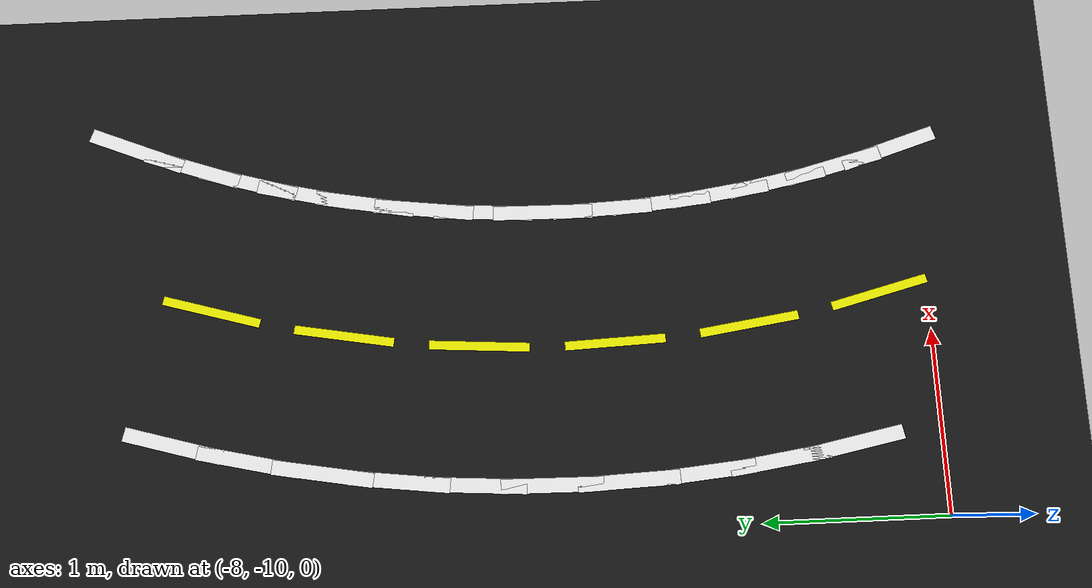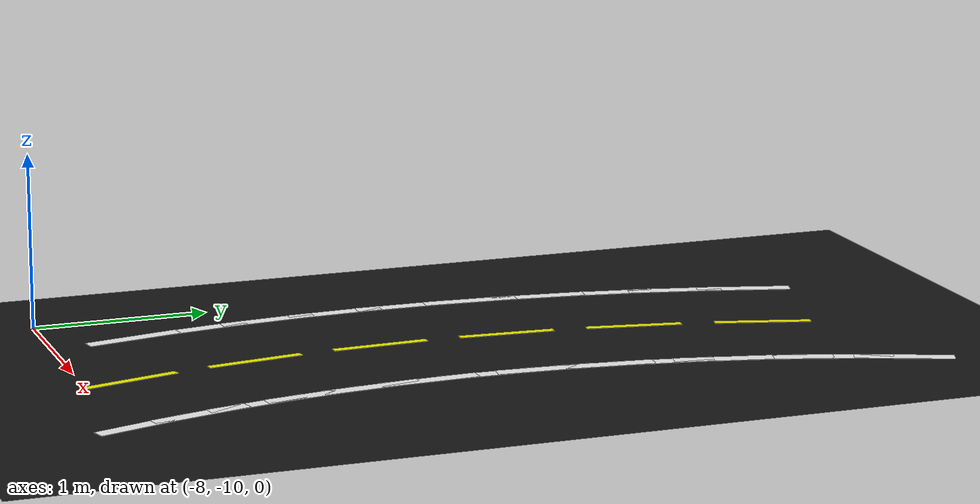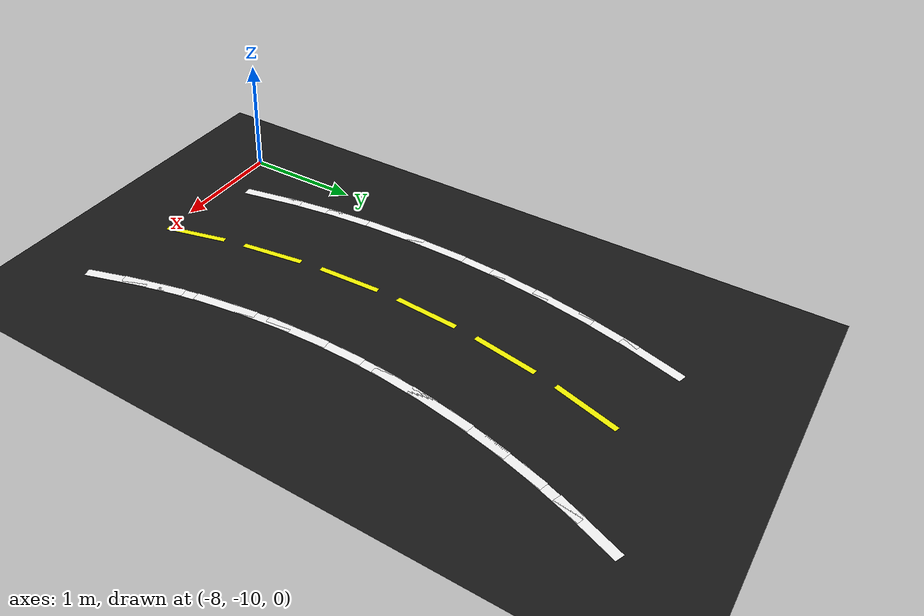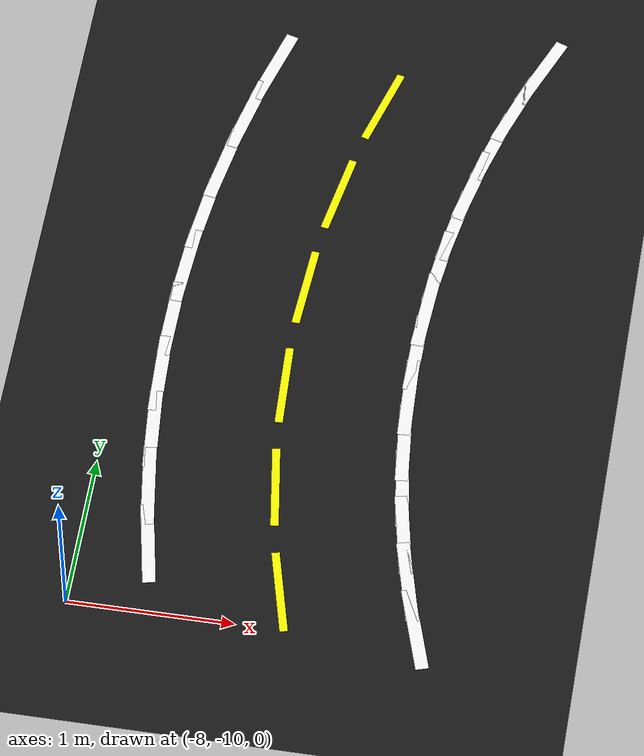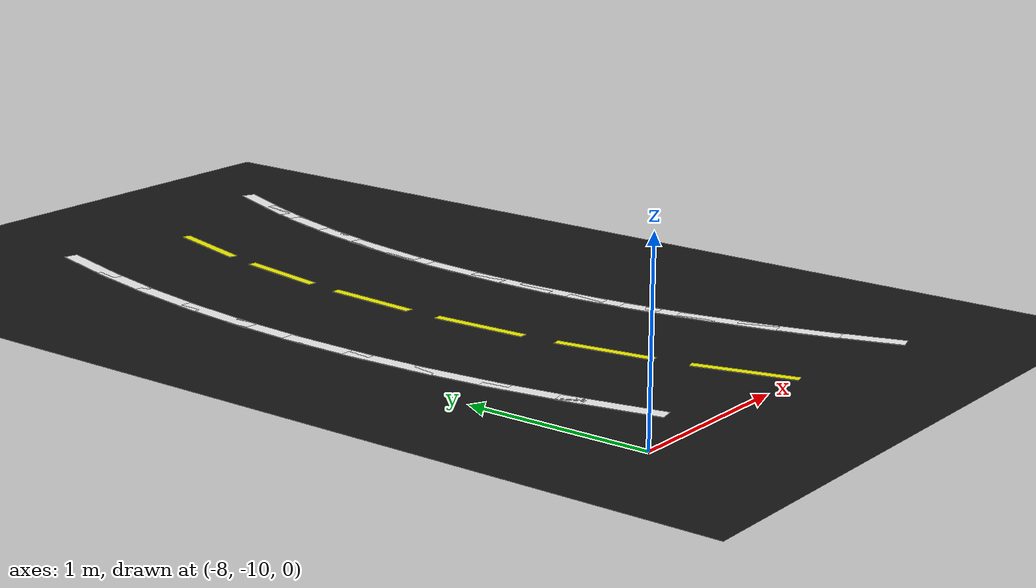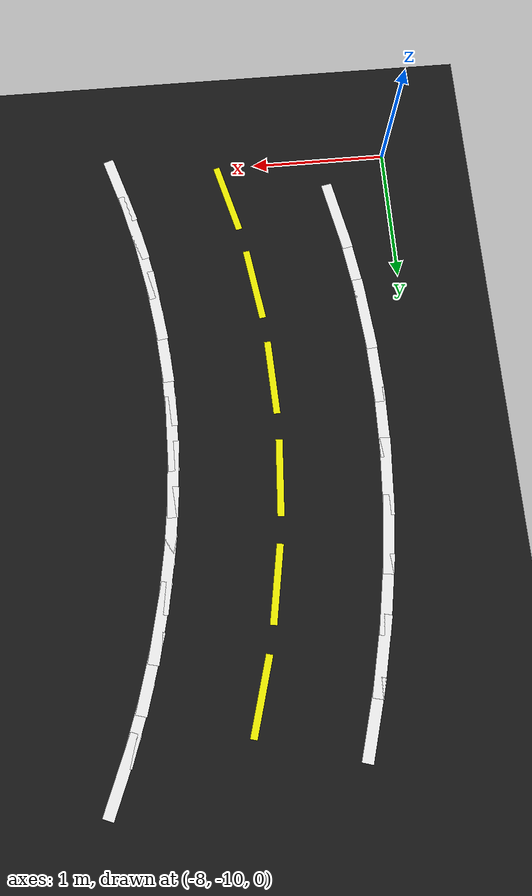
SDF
<sdf version="1.6">
 <world name="lane_world">
  <model name="ground">
   <static>true</static>
   <link name="link">
    <visual name="v">
     <geometry><plane><normal>0 0 1</normal><size>80 80</size></plane></geometry>
     <material><ambient>0.10 0.10 0.10 1</ambient><diffuse>0.10 0.10 0.10 1</diffuse></material>
    </visual>
    <collision name="c"><geometry><plane><normal>0 0 1</normal><size>80 80</size></plane></geometry></collision>
   </link>
  </model>
  <model name="seg_0506">
   <static>true</static>
   <pose>-5.9642 -9.8685 0.002 0 0 -1.2672</pose>
   <link name="link">
    <visual name="v">
     <geometry><box><size>0.550 0.080 0.0020</size></box></geometry>
     <material><ambient>1 1 1 1</ambient><diffuse>1 1 1 1</diffuse></material>
    </visual>
   </link>
  </model>
  <model name="seg_0508">
   <static>true</static>
   <pose>-6.0545 -9.5511 0.002 0 0 -1.3200</pose>
   <link name="link">
    <visual name="v">
     <geometry><box><size>0.550 0.080 0.0020</size></box></geometry>
     <material><ambient>1 1 1 1</ambient><diffuse>1 1 1 1</diffuse></material>
    </visual>
   </link>
  </model>
  <model name="seg_0510">
   <static>true</static>
   <pose>-6.7810 -9.7372 0.002 0 0 -1.3200</pose>
   <link name="link">
    <visual name="v">
     <geometry><box><size>0.550 0.05 0.0020</size></box></geometry>
     <material><ambient>1 1 0 1</ambient><diffuse>1 1 0 1</diffuse></material>
    </visual>
   </link>
  </model>
  <model name="seg_0511">
   <static>true</static>
   <pose>-6.1279 -9.2294 0.002 0 0 -1.3728</pose>
   <link name="link">
    <visual name="v">
     <geometry><box><size>0.550 0.080 0.0020</size></box></geometry>
     <material><ambient>1 1 1 1</ambient><diffuse>1 1 1 1</diffuse></material>
    </visual>
   </link>
  </model>
  <model name="seg_0512">
   <static>true</static>
   <pose>-7.5986 -9.5245 0.002 0 0 -1.3728</pose>
   <link name="link">
    <visual name="v">
     <geometry><box><size>0.550 0.080 0.0020</size></box></geometry>
     <material><ambient>1 1 1 1</ambient><diffuse>1 1 1 1</diffuse></material>
    </visual>
   </link>
  </model>
  <model name="seg_0513">
   <static>true</static>
   <pose>-6.1842 -8.9043 0.002 0 0 -1.4256</pose>
   <link name="link">
    <visual name="v">
     <geometry><box><size>0.550 0.080 0.0020</size></box></geometry>
     <material><ambient>1 1 1 1</ambient><diffuse>1 1 1 1</diffuse></material>
    </visual>
   </link>
  </model>
  <model name="seg_0514">
   <static>true</static>
   <pose>-7.6684 -9.1213 0.002 0 0 -1.4256</pose>
   <link name="link">
    <visual name="v">
     <geometry><box><size>0.550 0.080 0.0020</size></box></geometry>
     <material><ambient>1 1 1 1</ambient><diffuse>1 1 1 1</diffuse></material>
    </visual>
   </link>
  </model>
  <model name="seg_0515">
   <static>true</static>
   <pose>-6.9263 -9.0128 0.002 0 0 -1.4256</pose>
   <link name="link">
    <visual name="v">
     <geometry><box><size>0.550 0.05 0.0020</size></box></geometry>
     <material><ambient>1 1 0 1</ambient><diffuse>1 1 0 1</diffuse></material>
    </visual>
   </link>
  </model>
  <model name="seg_0516">
   <static>true</static>
   <pose>-6.2233 -8.5767 0.002 0 0 -1.4784</pose>
   <link name="link">
    <visual name="v">
     <geometry><box><size>0.550 0.080 0.0020</size></box></geometry>
     <material><ambient>1 1 1 1</ambient><diffuse>1 1 1 1</diffuse></material>
    </visual>
   </link>
  </model>
  <model name="seg_0517">
   <static>true</static>
   <pose>-7.7169 -8.7151 0.002 0 0 -1.4784</pose>
   <link name="link">
    <visual name="v">
     <geometry><box><size>0.550 0.080 0.0020</size></box></geometry>
     <material><ambient>1 1 1 1</ambient><diffuse>1 1 1 1</diffuse></material>
    </visual>
   </link>
  </model>
  <model name="seg_0518">
   <static>true</static>
   <pose>-6.2451 -8.2474 0.002 0 0 -1.5312</pose>
   <link name="link">
    <visual name="v">
     <geometry><box><size>0.550 0.080 0.0020</size></box></geometry>
     <material><ambient>1 1 1 1</ambient><diffuse>1 1 1 1</diffuse></material>
    </visual>
   </link>
  </model>
  <model name="seg_0519">
   <static>true</static>
   <pose>-7.7439 -8.3068 0.002 0 0 -1.5312</pose>
   <link name="link">
    <visual name="v">
     <geometry><box><size>0.550 0.080 0.0020</size></box></geometry>
     <material><ambient>1 1 1 1</ambient><diffuse>1 1 1 1</diffuse></material>
    </visual>
   </link>
  </model>
  <model name="seg_0520">
   <static>true</static>
   <pose>-6.9945 -8.2771 0.002 0 0 -1.5312</pose>
   <link name="link">
    <visual name="v">
     <geometry><box><size>0.550 0.05 0.0020</size></box></geometry>
     <material><ambient>1 1 0 1</ambient><diffuse>1 1 0 1</diffuse></material>
    </visual>
   </link>
  </model>
  <model name="seg_0521">
   <static>true</static>
   <pose>-6.2495 -7.9175 0.002 0 0 -1.5840</pose>
   <link name="link">
    <visual name="v">
     <geometry><box><size>0.550 0.080 0.0020</size></box></geometry>
     <material><ambient>1 1 1 1</ambient><diffuse>1 1 1 1</diffuse></material>
    </visual>
   </link>
  </model>
  <model name="seg_0522">
   <static>true</static>
   <pose>-7.7493 -7.8977 0.002 0 0 -1.5840</pose>
   <link name="link">
    <visual name="v">
     <geometry><box><size>0.550 0.080 0.0020</size></box></geometry>
     <material><ambient>1 1 1 1</ambient><diffuse>1 1 1 1</diffuse></material>
    </visual>
   </link>
  </model>
  <model name="seg_0523">
   <static>true</static>
   <pose>-6.2364 -7.5878 0.002 0 0 -1.6368</pose>
   <link name="link">
    <visual name="v">
     <geometry><box><size>0.550 0.080 0.0020</size></box></geometry>
     <material><ambient>1 1 1 1</ambient><diffuse>1 1 1 1</diffuse></material>
    </visual>
   </link>
  </model>
  <model name="seg_0524">
   <static>true</static>
   <pose>-7.7331 -7.4889 0.002 0 0 -1.6368</pose>
   <link name="link">
    <visual name="v">
     <geometry><box><size>0.550 0.080 0.0020</size></box></geometry>
     <material><ambient>1 1 1 1</ambient><diffuse>1 1 1 1</diffuse></material>
    </visual>
   </link>
  </model>
  <model name="seg_0525">
   <static>true</static>
   <pose>-6.9848 -7.5383 0.002 0 0 -1.6368</pose>
   <link name="link">
    <visual name="v">
     <geometry><box><size>0.550 0.05 0.0020</size></box></geometry>
     <material><ambient>1 1 0 1</ambient><diffuse>1 1 0 1</diffuse></material>
    </visual>
   </link>
  </model>
  <model name="seg_0526">
   <static>true</static>
   <pose>-6.2059 -7.2592 0.002 0 0 -1.6896</pose>
   <link name="link">
    <visual name="v">
     <geometry><box><size>0.550 0.080 0.0020</size></box></geometry>
     <material><ambient>1 1 1 1</ambient><diffuse>1 1 1 1</diffuse></material>
    </visual>
   </link>
  </model>
  <model name="seg_0527">
   <static>true</static>
   <pose>-7.6954 -7.0815 0.002 0 0 -1.6896</pose>
   <link name="link">
    <visual name="v">
     <geometry><box><size>0.550 0.080 0.0020</size></box></geometry>
     <material><ambient>1 1 1 1</ambient><diffuse>1 1 1 1</diffuse></material>
    </visual>
   </link>
  </model>
  <model name="seg_0528">
   <static>true</static>
   <pose>-6.1582 -6.9328 0.002 0 0 -1.7424</pose>
   <link name="link">
    <visual name="v">
     <geometry><box><size>0.550 0.080 0.0020</size></box></geometry>
     <material><ambient>1 1 1 1</ambient><diffuse>1 1 1 1</diffuse></material>
    </visual>
   </link>
  </model>
  <model name="seg_0529">
   <static>true</static>
   <pose>-7.6362 -6.6766 0.002 0 0 -1.7424</pose>
   <link name="link">
    <visual name="v">
     <geometry><box><size>0.550 0.080 0.0020</size></box></geometry>
     <material><ambient>1 1 1 1</ambient><diffuse>1 1 1 1</diffuse></material>
    </visual>
   </link>
  </model>
  <model name="seg_0530">
   <static>true</static>
   <pose>-6.8972 -6.8047 0.002 0 0 -1.7424</pose>
   <link name="link">
    <visual name="v">
     <geometry><box><size>0.550 0.05 0.0020</size></box></geometry>
     <material><ambient>1 1 0 1</ambient><diffuse>1 1 0 1</diffuse></material>
    </visual>
   </link>
  </model>
  <model name="seg_0531">
   <static>true</static>
   <pose>-6.0933 -6.6092 0.002 0 0 -1.7952</pose>
   <link name="link">
    <visual name="v">
     <geometry><box><size>0.550 0.080 0.0020</size></box></geometry>
     <material><ambient>1 1 1 1</ambient><diffuse>1 1 1 1</diffuse></material>
    </visual>
   </link>
  </model>
  <model name="seg_0532">
   <static>true</static>
   <pose>-7.5557 -6.2755 0.002 0 0 -1.7952</pose>
   <link name="link">
    <visual name="v">
     <geometry><box><size>0.550 0.080 0.0020</size></box></geometry>
     <material><ambient>1 1 1 1</ambient><diffuse>1 1 1 1</diffuse></material>
    </visual>
   </link>
  </model>
  <model name="seg_0533">
   <static>true</static>
   <pose>-6.0114 -6.2896 0.002 0 0 -1.8480</pose>
   <link name="link">
    <visual name="v">
     <geometry><box><size>0.550 0.080 0.0020</size></box></geometry>
     <material><ambient>1 1 1 1</ambient><diffuse>1 1 1 1</diffuse></material>
    </visual>
   </link>
  </model>
  <model name="seg_0534">
   <static>true</static>
   <pose>-7.4541 -5.8791 0.002 0 0 -1.8480</pose>
   <link name="link">
    <visual name="v">
     <geometry><box><size>0.550 0.080 0.0020</size></box></geometry>
     <material><ambient>1 1 1 1</ambient><diffuse>1 1 1 1</diffuse></material>
    </visual>
   </link>
  </model>
  <model name="seg_0535">
   <static>true</static>
   <pose>-6.7328 -6.0844 0.002 0 0 -1.8480</pose>
   <link name="link">
    <visual name="v">
     <geometry><box><size>0.550 0.05 0.0020</size></box></geometry>
     <material><ambient>1 1 0 1</ambient><diffuse>1 1 0 1</diffuse></material>
    </visual>
   </link>
  </model>
  <model name="seg_0536">
   <static>true</static>
   <pose>-5.9128 -5.9747 0.002 0 0 -1.9008</pose>
   <link name="link">
    <visual name="v">
     <geometry><box><size>0.550 0.080 0.0020</size></box></geometry>
     <material><ambient>1 1 1 1</ambient><diffuse>1 1 1 1</diffuse></material>
    </visual>
   </link>
  </model>
  <model name="seg_0538">
   <static>true</static>
   <pose>-5.7976 -5.6655 0.002 0 0 -1.9536</pose>
   <link name="link">
    <visual name="v">
     <geometry><box><size>0.550 0.080 0.0020</size></box></geometry>
     <material><ambient>1 1 1 1</ambient><diffuse>1 1 1 1</diffuse></material>
    </visual>
   </link>
  </model>
 </world>
</sdf>
